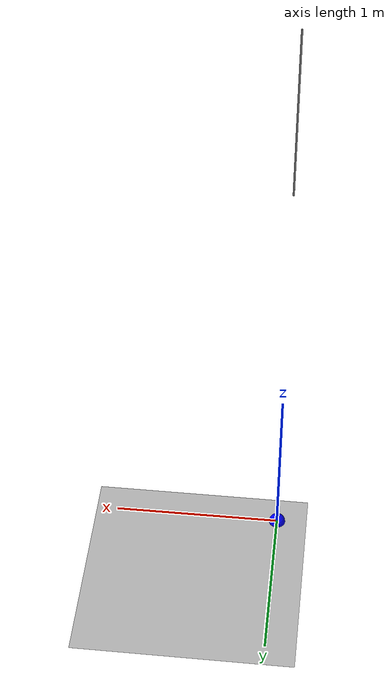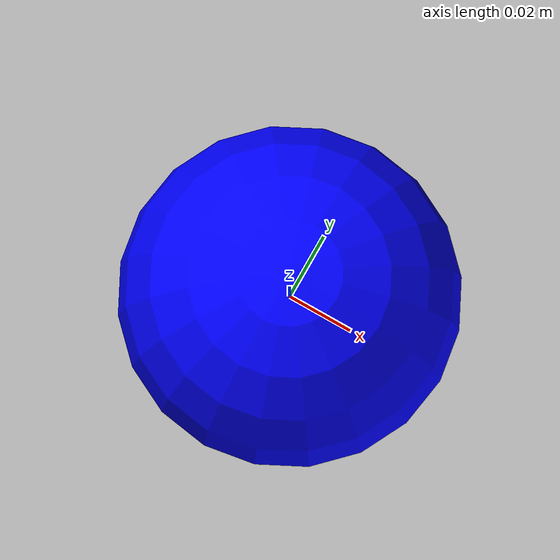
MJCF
<mujoco>
        <option gravity="0 0 -17.9"/>
        <worldbody>
            <light diffuse="0.5 0.5 0.5" pos="0 0 3" dir="0 0 -1"/>
            <!-- Big Plane -->
            <body name="surface" pos="-10 0 0">
                <geom type="plane" size="30 30 0.1" rgba="0.7 0.7 0.7 1" friction="1 1 1"/>
            </body>

            <!-- Fixed anchor point -->
            <body name="anchor" pos="0 0 6">
                <!-- Pendulum body -->
                <body name="pendulum" pos="0 0 -2.5">
                    <joint name="hinge" type="hinge" axis="1 0 0"/>
                    <geom type="cylinder" size="0.005 0.005" fromto="0 0 0 0 0 -1" density="10"/>
                </body>
            </body>

            <!-- Unknown mass -->
            <body name="hollow_sphere" pos="0 0 0">
                <geom type="sphere" size="0.05" density="0.7" rgba="0 0 1 1"/>
                <joint name="hollow_sphere_joint" type="free"/>
            </body>
        </worldbody>
    </mujoco>
